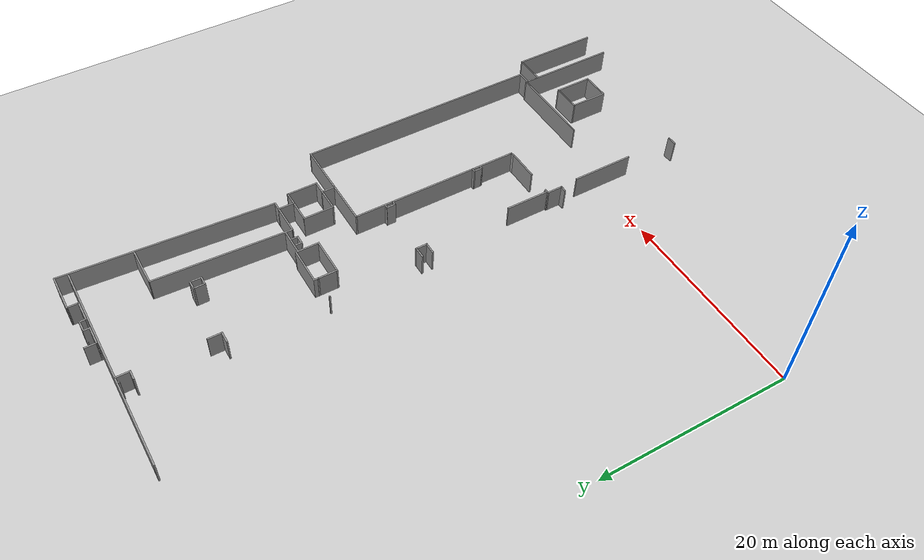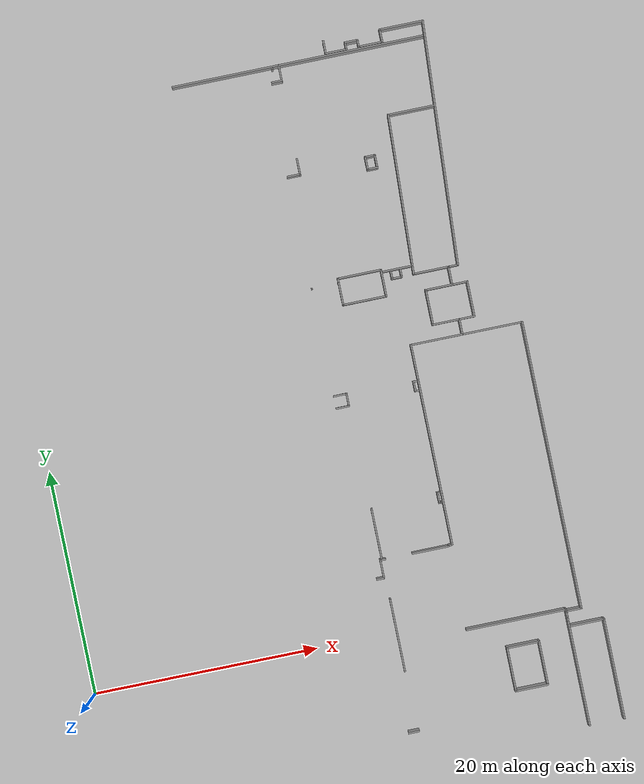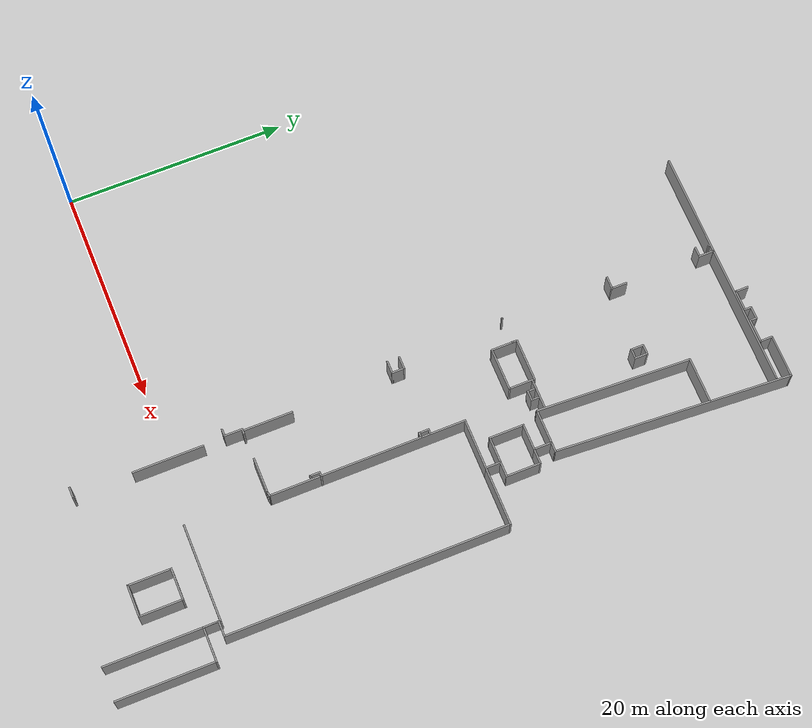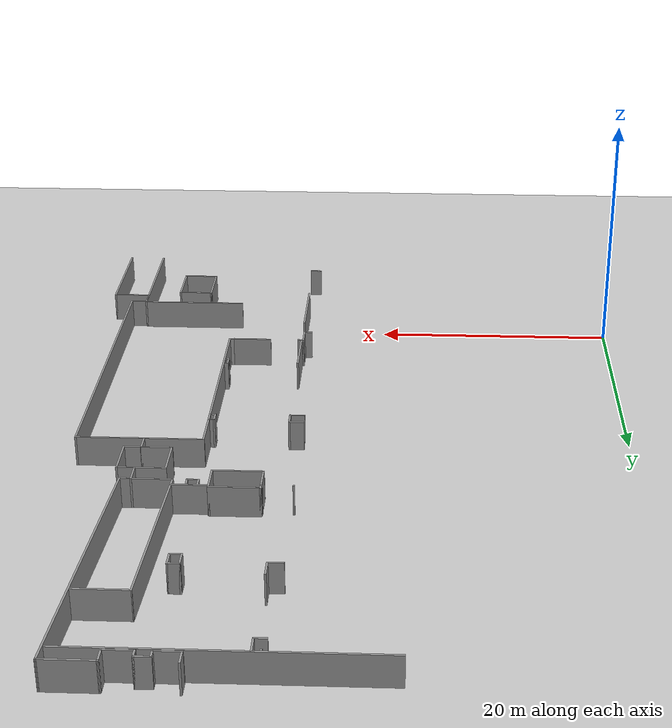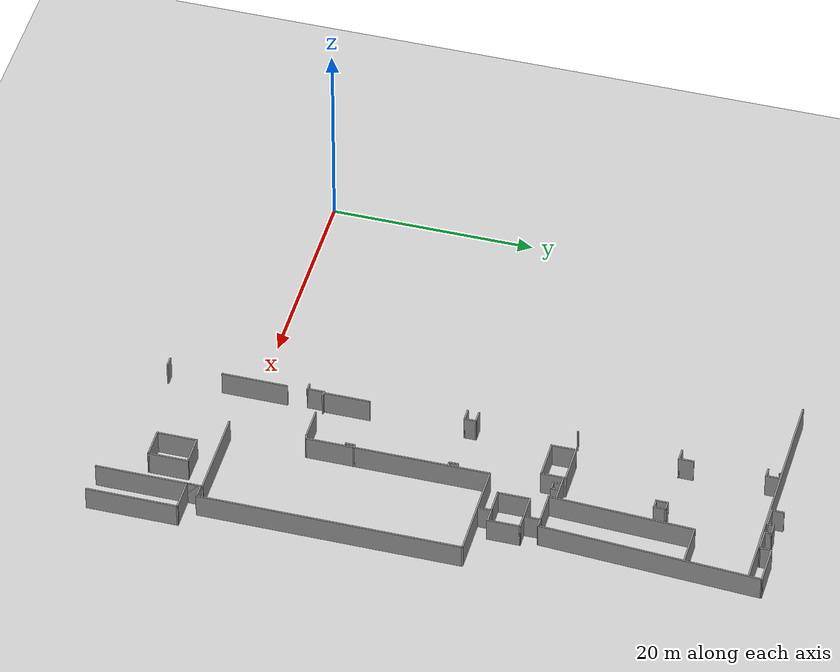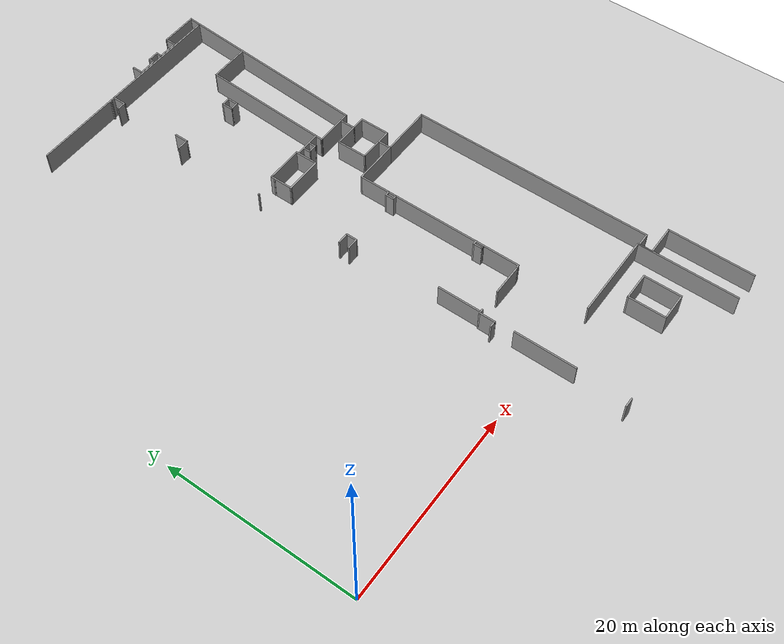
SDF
<sdf version="1.6">
 <world name="default">
  <model name="ground_plane">
   <static>1</static>
   <link name="link">
    <collision name="collision">
     <geometry><plane><normal>0 0 1</normal><size>100 100</size></plane></geometry>
     <surface><friction><ode><mu>100</mu><mu2>50</mu2></ode></friction></surface>
    </collision>
    <visual name="visual">
     <cast_shadows>0</cast_shadows>
     <geometry><plane><normal>0 0 1</normal><size>100 100</size></plane></geometry>
     <material>
      <script><uri>file://media/materials/scripts/gazebo.material</uri><name>Gazebo/Grey</name></script>
     </material>
    </visual>
   </link>
  </model>
  <model name="SEH_v11">
   <pose>0.537033 1.18809 0 0 -0 0</pose>
   <link name="Wall_104">
    <collision name="Wall_104_Collision">
     <geometry><box><size>6.5 0.15 2.5</size></box></geometry>
     <pose>0 0 1.25 0 -0 0</pose>
    </collision>
    <visual name="Wall_104_Visual">
     <pose>0 0 1.25 0 -0 0</pose>
     <geometry><box><size>6.5 0.15 2.5</size></box></geometry>
     <material>
      <script><uri>file://media/materials/scripts/gazebo.material</uri><name>Gazebo/Grey</name></script>
      <ambient>1 1 1 1</ambient>
     </material>
     <meta><layer>0</layer></meta>
    </visual>
    <pose>26.5958 -1.36118 0 0 -0 1.5708</pose>
   </link>
   <link name="Wall_111">
    <collision name="Wall_111_Collision">
     <geometry><box><size>0.75 0.15 2.5</size></box></geometry>
     <pose>0 0 1.25 0 -0 0</pose>
    </collision>
    <visual name="Wall_111_Visual">
     <pose>0 0 1.25 0 -0 0</pose>
     <geometry><box><size>0.75 0.15 2.5</size></box></geometry>
     <material>
      <script><uri>file://media/materials/scripts/gazebo.material</uri><name>Gazebo/Grey</name></script>
      <ambient>1 1 1 1</ambient>
     </material>
     <meta><layer>0</layer></meta>
    </visual>
    <pose>26.1458 3.81382 0 0 -0 0</pose>
   </link>
   <link name="Wall_112">
    <collision name="Wall_112_Collision">
     <geometry><box><size>1.75 0.15 2.5</size></box></geometry>
     <pose>0 0 1.25 0 -0 0</pose>
    </collision>
    <visual name="Wall_112_Visual">
     <pose>0 0 1.25 0 -0 0</pose>
     <geometry><box><size>1.75 0.15 2.5</size></box></geometry>
     <material>
      <script><uri>file://media/materials/scripts/gazebo.material</uri><name>Gazebo/Grey</name></script>
      <ambient>1 1 1 1</ambient>
     </material>
     <meta><layer>0</layer></meta>
    </visual>
    <pose>26.4458 4.61382 0 0 -0 1.5708</pose>
   </link>
   <link name="Wall_113">
    <pose>29.4958 5.41382 0 0 -0 0</pose>
    <visual name="Wall_113_Visual_0">
     <pose>-2.84048 0 1.25 0 -0 0</pose>
     <geometry><box><size>0.569046 0.15 2.5</size></box></geometry>
     <material>
      <script><uri>file://media/materials/scripts/gazebo.material</uri><name>Gazebo/Grey</name></script>
      <ambient>1 1 1 1</ambient>
     </material>
     <meta><layer>0</layer></meta>
    </visual>
    <collision name="Wall_113_Collision_0">
     <geometry><box><size>0.569046 0.15 2.5</size></box></geometry>
     <pose>-2.84048 0 1.25 0 -0 0</pose>
    </collision>
    <visual name="Wall_113_Visual_1">
     <pose>1.45452 0 1.25 0 -0 0</pose>
     <geometry><box><size>3.34095 0.15 2.5</size></box></geometry>
     <material>
      <script><uri>file://media/materials/scripts/gazebo.material</uri><name>Gazebo/Grey</name></script>
      <ambient>1 1 1 1</ambient>
     </material>
     <meta><layer>0</layer></meta>
    </visual>
    <collision name="Wall_113_Collision_1">
     <geometry><box><size>3.34095 0.15 2.5</size></box></geometry>
     <pose>1.45452 0 1.25 0 -0 0</pose>
    </collision>
   </link>
   <link name="Wall_180">
    <collision name="Wall_180_Collision">
     <geometry><box><size>1 0.15 2.5</size></box></geometry>
     <pose>0 0 1.25 0 -0 0</pose>
    </collision>
    <visual name="Wall_180_Visual">
     <pose>0 0 1.25 0 -0 0</pose>
     <geometry><box><size>1 0.15 2.5</size></box></geometry>
     <material>
      <script><uri>file://media/materials/scripts/gazebo.material</uri><name>Gazebo/Grey</name></script>
      <ambient>1 1 1 1</ambient>
     </material>
     <meta><layer>0</layer></meta>
    </visual>
    <pose>26.2934 -9.93506 0 0 -0 3.14159</pose>
   </link>
   <link name="Wall_198">
    <collision name="Wall_198_Collision">
     <geometry><box><size>2.5 0.15 2.5</size></box></geometry>
     <pose>0 0 1.25 0 -0 0</pose>
    </collision>
    <visual name="Wall_198_Visual">
     <pose>0 0 1.25 0 -0 0</pose>
     <geometry><box><size>2.5 0.15 2.5</size></box></geometry>
     <material>
      <script><uri>file://media/materials/scripts/gazebo.material</uri><name>Gazebo/Grey</name></script>
      <ambient>1 1 1 1</ambient>
     </material>
     <meta><layer>0</layer></meta>
    </visual>
    <pose>36.3156 24.6976 0 0 -0 3.14159</pose>
   </link>
   <link name="Wall_199">
    <collision name="Wall_199_Collision">
     <geometry><box><size>3.25 0.15 2.5</size></box></geometry>
     <pose>0 0 1.25 0 -0 0</pose>
    </collision>
    <visual name="Wall_199_Visual">
     <pose>0 0 1.25 0 -0 0</pose>
     <geometry><box><size>3.25 0.15 2.5</size></box></geometry>
     <material>
      <script><uri>file://media/materials/scripts/gazebo.material</uri><name>Gazebo/Grey</name></script>
      <ambient>1 1 1 1</ambient>
     </material>
     <meta><layer>0</layer></meta>
    </visual>
    <pose>35.1406 26.2476 0 0 -0 1.5708</pose>
   </link>
   <link name="Wall_200">
    <collision name="Wall_200_Collision">
     <geometry><box><size>2.5 0.15 2.5</size></box></geometry>
     <pose>0 0 1.25 0 -0 0</pose>
    </collision>
    <visual name="Wall_200_Visual">
     <pose>0 0 1.25 0 -0 0</pose>
     <geometry><box><size>2.5 0.15 2.5</size></box></geometry>
     <material>
      <script><uri>file://media/materials/scripts/gazebo.material</uri><name>Gazebo/Grey</name></script>
      <ambient>1 1 1 1</ambient>
     </material>
     <meta><layer>0</layer></meta>
    </visual>
    <pose>36.3156 27.7976 0 0 -0 0</pose>
   </link>
   <link name="Wall_203">
    <collision name="Wall_203_Collision">
     <geometry><box><size>3.25 0.15 2.5</size></box></geometry>
     <pose>0 0 1.25 0 -0 0</pose>
    </collision>
    <visual name="Wall_203_Visual">
     <pose>0 0 1.25 0 -0 0</pose>
     <geometry><box><size>3.25 0.15 2.5</size></box></geometry>
     <material>
      <script><uri>file://media/materials/scripts/gazebo.material</uri><name>Gazebo/Grey</name></script>
      <ambient>1 1 1 1</ambient>
     </material>
     <meta><layer>0</layer></meta>
    </visual>
    <pose>35.9406 29.3976 0 0 -0 3.14159</pose>
   </link>
   <link name="Wall_207">
    <collision name="Wall_207_Collision">
     <geometry><box><size>4.25 0.15 2.5</size></box></geometry>
     <pose>0 0 1.25 0 -0 0</pose>
    </collision>
    <visual name="Wall_207_Visual">
     <pose>0 0 1.25 0 -0 0</pose>
     <geometry><box><size>4.25 0.15 2.5</size></box></geometry>
     <material>
      <script><uri>file://media/materials/scripts/gazebo.material</uri><name>Gazebo/Grey</name></script>
      <ambient>1 1 1 1</ambient>
     </material>
     <meta><layer>0</layer></meta>
    </visual>
    <pose>37.0768 43.4917 0 0 -0 9.9e-05</pose>
   </link>
   <link name="Wall_209">
    <collision name="Wall_209_Collision">
     <geometry><box><size>14.2582 0.15 2.5</size></box></geometry>
     <pose>0 0 1.25 0 -0 0</pose>
    </collision>
    <visual name="Wall_209_Visual">
     <pose>0 0 1.25 0 -0 0</pose>
     <geometry><box><size>14.2582 0.15 2.5</size></box></geometry>
     <material>
      <script><uri>file://media/materials/scripts/gazebo.material</uri><name>Gazebo/Grey</name></script>
      <ambient>1 1 1 1</ambient>
     </material>
     <meta><layer>0</layer></meta>
    </visual>
    <pose>34.7086 36.4446 0 0 0 -1.61589</pose>
   </link>
   <link name="Wall_211">
    <collision name="Wall_211_Collision">
     <geometry><box><size>22.5 0.15 2.5</size></box></geometry>
     <pose>0 0 1.25 0 -0 0</pose>
    </collision>
    <visual name="Wall_211_Visual">
     <pose>0 0 1.25 0 -0 0</pose>
     <geometry><box><size>22.5 0.15 2.5</size></box></geometry>
     <material>
      <script><uri>file://media/materials/scripts/gazebo.material</uri><name>Gazebo/Grey</name></script>
      <ambient>1 1 1 1</ambient>
     </material>
     <meta><layer>0</layer></meta>
    </visual>
    <pose>28.196 49.6845 0 0 -0 0</pose>
   </link>
   <link name="Wall_215">
    <collision name="Wall_215_Collision">
     <geometry><box><size>1.25 0.15 2.5</size></box></geometry>
     <pose>0 0 1.25 0 -0 0</pose>
    </collision>
    <visual name="Wall_215_Visual">
     <pose>0 0 1.25 0 -0 0</pose>
     <geometry><box><size>1.25 0.15 2.5</size></box></geometry>
     <material>
      <script><uri>file://media/materials/scripts/gazebo.material</uri><name>Gazebo/Grey</name></script>
      <ambient>1 1 1 1</ambient>
     </material>
     <meta><layer>0</layer></meta>
    </visual>
    <pose>25.8523 39.9589 0 0 -0 0</pose>
   </link>
   <link name="Wall_216">
    <collision name="Wall_216_Collision">
     <geometry><box><size>1.5 0.15 2.5</size></box></geometry>
     <pose>0 0 1.25 0 -0 0</pose>
    </collision>
    <visual name="Wall_216_Visual">
     <pose>0 0 1.25 0 -0 0</pose>
     <geometry><box><size>1.5 0.15 2.5</size></box></geometry>
     <material>
      <script><uri>file://media/materials/scripts/gazebo.material</uri><name>Gazebo/Grey</name></script>
      <ambient>1 1 1 1</ambient>
     </material>
     <meta><layer>0</layer></meta>
    </visual>
    <pose>26.4023 40.6339 0 0 -0 1.5708</pose>
   </link>
   <link name="Wall_226">
    <collision name="Wall_226_Collision">
     <geometry><box><size>0.15 0.15 2.5</size></box></geometry>
     <pose>0 0 1.25 0 -0 0</pose>
    </collision>
    <visual name="Wall_226_Visual">
     <pose>0 0 1.25 0 -0 0</pose>
     <geometry><box><size>0.15 0.15 2.5</size></box></geometry>
     <material>
      <script><uri>file://media/materials/scripts/gazebo.material</uri><name>Gazebo/Grey</name></script>
      <ambient>1 1 1 1</ambient>
     </material>
     <meta><layer>0</layer></meta>
    </visual>
    <pose>25.8819 49.5142 0 0 -0 0</pose>
   </link>
   <link name="Wall_234">
    <collision name="Wall_234_Collision">
     <geometry><box><size>4.75 0.15 2.5</size></box></geometry>
     <pose>0 0 1.25 0 -0 0</pose>
    </collision>
    <visual name="Wall_234_Visual">
     <pose>0 0 1.25 0 -0 0</pose>
     <geometry><box><size>4.75 0.15 2.5</size></box></geometry>
     <material>
      <script><uri>file://media/materials/scripts/gazebo.material</uri><name>Gazebo/Grey</name></script>
      <ambient>1 1 1 1</ambient>
     </material>
     <meta><layer>0</layer></meta>
    </visual>
    <pose>35.1906 23.3476 0 0 -0 3.14159</pose>
   </link>
   <link name="Wall_235">
    <collision name="Wall_235_Collision">
     <geometry><box><size>18 0.15 2.5</size></box></geometry>
     <pose>0 0 1.25 0 -0 0</pose>
    </collision>
    <visual name="Wall_235_Visual">
     <pose>0 0 1.25 0 -0 0</pose>
     <geometry><box><size>18 0.15 2.5</size></box></geometry>
     <material>
      <script><uri>file://media/materials/scripts/gazebo.material</uri><name>Gazebo/Grey</name></script>
      <ambient>1 1 1 1</ambient>
     </material>
     <meta><layer>0</layer></meta>
    </visual>
    <pose>32.8906 14.4226 0 0 0 -1.5708</pose>
   </link>
   <link name="Wall_236">
    <collision name="Wall_236_Collision">
     <geometry><box><size>0.504818 0.15 2.5</size></box></geometry>
     <pose>0 0 1.25 0 -0 0</pose>
    </collision>
    <visual name="Wall_236_Visual">
     <pose>0 0 1.25 0 -0 0</pose>
     <geometry><box><size>0.504818 0.15 2.5</size></box></geometry>
     <material>
      <script><uri>file://media/materials/scripts/gazebo.material</uri><name>Gazebo/Grey</name></script>
      <ambient>1 1 1 1</ambient>
     </material>
     <meta><layer>0</layer></meta>
    </visual>
    <pose>32.7182 5.45573 0 0 0 -2.90311</pose>
   </link>
   <link name="Wall_238">
    <collision name="Wall_238_Collision">
     <geometry><box><size>0.5 0.15 2.5</size></box></geometry>
     <pose>0 0 1.25 0 -0 0</pose>
    </collision>
    <visual name="Wall_238_Visual">
     <pose>0 0 1.25 0 -0 0</pose>
     <geometry><box><size>0.5 0.15 2.5</size></box></geometry>
     <material>
      <script><uri>file://media/materials/scripts/gazebo.material</uri><name>Gazebo/Grey</name></script>
      <ambient>1 1 1 1</ambient>
     </material>
     <meta><layer>0</layer></meta>
    </visual>
    <pose>32.6399 20.15 0 0 -0 3.14159</pose>
   </link>
   <link name="Wall_239">
    <collision name="Wall_239_Collision">
     <geometry><box><size>1 0.15 2.5</size></box></geometry>
     <pose>0 0 1.25 0 -0 0</pose>
    </collision>
    <visual name="Wall_239_Visual">
     <pose>0 0 1.25 0 -0 0</pose>
     <geometry><box><size>1 0.15 2.5</size></box></geometry>
     <material>
      <script><uri>file://media/materials/scripts/gazebo.material</uri><name>Gazebo/Grey</name></script>
      <ambient>1 1 1 1</ambient>
     </material>
     <meta><layer>0</layer></meta>
    </visual>
    <pose>32.4649 19.725 0 0 0 -1.5708</pose>
   </link>
   <link name="Wall_240">
    <collision name="Wall_240_Collision">
     <geometry><box><size>0.5 0.15 2.5</size></box></geometry>
     <pose>0 0 1.25 0 -0 0</pose>
    </collision>
    <visual name="Wall_240_Visual">
     <pose>0 0 1.25 0 -0 0</pose>
     <geometry><box><size>0.5 0.15 2.5</size></box></geometry>
     <material>
      <script><uri>file://media/materials/scripts/gazebo.material</uri><name>Gazebo/Grey</name></script>
      <ambient>1 1 1 1</ambient>
     </material>
     <meta><layer>0</layer></meta>
    </visual>
    <pose>32.6399 19.3 0 0 -0 0</pose>
   </link>
   <link name="Wall_242">
    <collision name="Wall_242_Collision">
     <geometry><box><size>0.5 0.15 2.5</size></box></geometry>
     <pose>0 0 1.25 0 -0 0</pose>
    </collision>
    <visual name="Wall_242_Visual">
     <pose>0 0 1.25 0 -0 0</pose>
     <geometry><box><size>0.5 0.15 2.5</size></box></geometry>
     <material>
      <script><uri>file://media/materials/scripts/gazebo.material</uri><name>Gazebo/Grey</name></script>
      <ambient>1 1 1 1</ambient>
     </material>
     <meta><layer>0</layer></meta>
    </visual>
    <pose>32.7254 10.1432 0 0 -0 3.14159</pose>
   </link>
   <link name="Wall_243">
    <collision name="Wall_243_Collision">
     <geometry><box><size>1 0.15 2.5</size></box></geometry>
     <pose>0 0 1.25 0 -0 0</pose>
    </collision>
    <visual name="Wall_243_Visual">
     <pose>0 0 1.25 0 -0 0</pose>
     <geometry><box><size>1 0.15 2.5</size></box></geometry>
     <material>
      <script><uri>file://media/materials/scripts/gazebo.material</uri><name>Gazebo/Grey</name></script>
      <ambient>1 1 1 1</ambient>
     </material>
     <meta><layer>0</layer></meta>
    </visual>
    <pose>32.5504 9.71818 0 0 0 -1.5708</pose>
   </link>
   <link name="Wall_244">
    <collision name="Wall_244_Collision">
     <geometry><box><size>0.25 0.15 2.5</size></box></geometry>
     <pose>0 0 1.25 0 -0 0</pose>
    </collision>
    <visual name="Wall_244_Visual">
     <pose>0 0 1.25 0 -0 0</pose>
     <geometry><box><size>0.25 0.15 2.5</size></box></geometry>
     <material>
      <script><uri>file://media/materials/scripts/gazebo.material</uri><name>Gazebo/Grey</name></script>
      <ambient>1 1 1 1</ambient>
     </material>
     <meta><layer>0</layer></meta>
    </visual>
    <pose>32.6004 9.29318 0 0 -0 0</pose>
   </link>
   <link name="Wall_245">
    <collision name="Wall_245_Collision">
     <geometry><box><size>0.25 0.15 2.5</size></box></geometry>
     <pose>0 0 1.25 0 -0 0</pose>
    </collision>
    <visual name="Wall_245_Visual">
     <pose>0 0 1.25 0 -0 0</pose>
     <geometry><box><size>0.25 0.15 2.5</size></box></geometry>
     <material>
      <script><uri>file://media/materials/scripts/gazebo.material</uri><name>Gazebo/Grey</name></script>
      <ambient>1 1 1 1</ambient>
     </material>
     <meta><layer>0</layer></meta>
    </visual>
    <pose>32.7004 9.29318 0 0 -0 0</pose>
   </link>
   <link name="Wall_247">
    <collision name="Wall_247_Collision">
     <geometry><box><size>1.25 0.15 2.5</size></box></geometry>
     <pose>0 0 1.25 0 -0 0</pose>
    </collision>
    <visual name="Wall_247_Visual">
     <pose>0 0 1.25 0 -0 0</pose>
     <geometry><box><size>1.25 0.15 2.5</size></box></geometry>
     <material>
      <script><uri>file://media/materials/scripts/gazebo.material</uri><name>Gazebo/Grey</name></script>
      <ambient>1 1 1 1</ambient>
     </material>
     <meta><layer>0</layer></meta>
    </visual>
    <pose>32.2998 39.7308 0 0 0 -1.5708</pose>
   </link>
   <link name="Wall_248">
    <collision name="Wall_248_Collision">
     <geometry><box><size>1 0.15 2.5</size></box></geometry>
     <pose>0 0 1.25 0 -0 0</pose>
    </collision>
    <visual name="Wall_248_Visual">
     <pose>0 0 1.25 0 -0 0</pose>
     <geometry><box><size>1 0.15 2.5</size></box></geometry>
     <material>
      <script><uri>file://media/materials/scripts/gazebo.material</uri><name>Gazebo/Grey</name></script>
      <ambient>1 1 1 1</ambient>
     </material>
     <meta><layer>0</layer></meta>
    </visual>
    <pose>32.7248 39.1808 0 0 -0 0</pose>
   </link>
   <link name="Wall_249">
    <collision name="Wall_249_Collision">
     <geometry><box><size>1.25 0.15 2.5</size></box></geometry>
     <pose>0 0 1.25 0 -0 0</pose>
    </collision>
    <visual name="Wall_249_Visual">
     <pose>0 0 1.25 0 -0 0</pose>
     <geometry><box><size>1.25 0.15 2.5</size></box></geometry>
     <material>
      <script><uri>file://media/materials/scripts/gazebo.material</uri><name>Gazebo/Grey</name></script>
      <ambient>1 1 1 1</ambient>
     </material>
     <meta><layer>0</layer></meta>
    </visual>
    <pose>33.1498 39.7308 0 0 -0 1.5708</pose>
   </link>
   <link name="Wall_250">
    <collision name="Wall_250_Collision">
     <geometry><box><size>1 0.15 2.5</size></box></geometry>
     <pose>0 0 1.25 0 -0 0</pose>
    </collision>
    <visual name="Wall_250_Visual">
     <pose>0 0 1.25 0 -0 0</pose>
     <geometry><box><size>1 0.15 2.5</size></box></geometry>
     <material>
      <script><uri>file://media/materials/scripts/gazebo.material</uri><name>Gazebo/Grey</name></script>
      <ambient>1 1 1 1</ambient>
     </material>
     <meta><layer>0</layer></meta>
    </visual>
    <pose>32.7248 40.2808 0 0 -0 3.14159</pose>
   </link>
   <link name="Wall_255">
    <collision name="Wall_255_Collision">
     <geometry><box><size>1.25 0.15 2.5</size></box></geometry>
     <pose>0 0 1.25 0 -0 0</pose>
    </collision>
    <visual name="Wall_255_Visual">
     <pose>0 0 1.25 0 -0 0</pose>
     <geometry><box><size>1.25 0.15 2.5</size></box></geometry>
     <material>
      <script><uri>file://media/materials/scripts/gazebo.material</uri><name>Gazebo/Grey</name></script>
      <ambient>1 1 1 1</ambient>
     </material>
     <meta><layer>0</layer></meta>
    </visual>
    <pose>25.9414 19.1971 0 0 -0 0</pose>
   </link>
   <link name="Wall_256">
    <collision name="Wall_256_Collision">
     <geometry><box><size>1.25 0.15 2.5</size></box></geometry>
     <pose>0 0 1.25 0 -0 0</pose>
    </collision>
    <visual name="Wall_256_Visual">
     <pose>0 0 1.25 0 -0 0</pose>
     <geometry><box><size>1.25 0.15 2.5</size></box></geometry>
     <material>
      <script><uri>file://media/materials/scripts/gazebo.material</uri><name>Gazebo/Grey</name></script>
      <ambient>1 1 1 1</ambient>
     </material>
     <meta><layer>0</layer></meta>
    </visual>
    <pose>26.4914 19.7471 0 0 -0 1.5708</pose>
   </link>
   <link name="Wall_257">
    <collision name="Wall_257_Collision">
     <geometry><box><size>1.25 0.15 2.5</size></box></geometry>
     <pose>0 0 1.25 0 -0 0</pose>
    </collision>
    <visual name="Wall_257_Visual">
     <pose>0 0 1.25 0 -0 0</pose>
     <geometry><box><size>1.25 0.15 2.5</size></box></geometry>
     <material>
      <script><uri>file://media/materials/scripts/gazebo.material</uri><name>Gazebo/Grey</name></script>
      <ambient>1 1 1 1</ambient>
     </material>
     <meta><layer>0</layer></meta>
    </visual>
    <pose>25.9414 20.2971 0 0 -0 3.14159</pose>
   </link>
   <link name="Wall_259">
    <collision name="Wall_259_Collision">
     <geometry><box><size>2.75 0.15 2.5</size></box></geometry>
     <pose>0 0 1.25 0 -0 0</pose>
    </collision>
    <visual name="Wall_259_Visual">
     <pose>0 0 1.25 0 -0 0</pose>
     <geometry><box><size>2.75 0.15 2.5</size></box></geometry>
     <material>
      <script><uri>file://media/materials/scripts/gazebo.material</uri><name>Gazebo/Grey</name></script>
      <ambient>1 1 1 1</ambient>
     </material>
     <meta><layer>0</layer></meta>
    </visual>
    <pose>33.0966 30.1227 0 0 -0 3.14159</pose>
   </link>
   <link name="Wall_261">
    <collision name="Wall_261_Collision">
     <geometry><box><size>2.5 0.15 2.5</size></box></geometry>
     <pose>0 0 1.25 0 -0 0</pose>
    </collision>
    <visual name="Wall_261_Visual">
     <pose>0 0 1.25 0 -0 0</pose>
     <geometry><box><size>2.5 0.15 2.5</size></box></geometry>
     <material>
      <script><uri>file://media/materials/scripts/gazebo.material</uri><name>Gazebo/Grey</name></script>
      <ambient>1 1 1 1</ambient>
     </material>
     <meta><layer>0</layer></meta>
    </visual>
    <pose>31.6425 29.1567 0 0 0 -1.5708</pose>
   </link>
   <link name="Wall_262">
    <collision name="Wall_262_Collision">
     <geometry><box><size>4 0.15 2.5</size></box></geometry>
     <pose>0 0 1.25 0 -0 0</pose>
    </collision>
    <visual name="Wall_262_Visual">
     <pose>0 0 1.25 0 -0 0</pose>
     <geometry><box><size>4 0.15 2.5</size></box></geometry>
     <material>
      <script><uri>file://media/materials/scripts/gazebo.material</uri><name>Gazebo/Grey</name></script>
      <ambient>1 1 1 1</ambient>
     </material>
     <meta><layer>0</layer></meta>
    </visual>
    <pose>29.7175 27.9817 0 0 -0 3.14159</pose>
   </link>
   <link name="Wall_263">
    <collision name="Wall_263_Collision">
     <geometry><box><size>2.5 0.15 2.5</size></box></geometry>
     <pose>0 0 1.25 0 -0 0</pose>
    </collision>
    <visual name="Wall_263_Visual">
     <pose>0 0 1.25 0 -0 0</pose>
     <geometry><box><size>2.5 0.15 2.5</size></box></geometry>
     <material>
      <script><uri>file://media/materials/scripts/gazebo.material</uri><name>Gazebo/Grey</name></script>
      <ambient>1 1 1 1</ambient>
     </material>
     <meta><layer>0</layer></meta>
    </visual>
    <pose>27.7925 29.1567 0 0 -0 1.5708</pose>
   </link>
   <link name="Wall_264">
    <collision name="Wall_264_Collision">
     <geometry><box><size>4 0.15 2.5</size></box></geometry>
     <pose>0 0 1.25 0 -0 0</pose>
    </collision>
    <visual name="Wall_264_Visual">
     <pose>0 0 1.25 0 -0 0</pose>
     <geometry><box><size>4 0.15 2.5</size></box></geometry>
     <material>
      <script><uri>file://media/materials/scripts/gazebo.material</uri><name>Gazebo/Grey</name></script>
      <ambient>1 1 1 1</ambient>
     </material>
     <meta><layer>0</layer></meta>
    </visual>
    <pose>29.7175 30.3317 0 0 -0 0</pose>
   </link>
   <link name="Wall_268">
    <pose>26.5693 29.9353 0 0 -0 3.14159</pose>
    <visual name="Wall_268_Visual_0">
     <pose>-1.18861 0 1.25 0 -0 0</pose>
     <geometry><box><size>0.12278 0.15 2.5</size></box></geometry>
     <material>
      <script><uri>file://media/materials/scripts/gazebo.material</uri><name>Gazebo/Grey</name></script>
      <ambient>1 1 1 1</ambient>
     </material>
     <meta><layer>0</layer></meta>
    </visual>
    <collision name="Wall_268_Collision_0">
     <geometry><box><size>0.12278 0.15 2.5</size></box></geometry>
     <pose>-1.18861 0 1.25 0 -0 0</pose>
    </collision>
    <visual name="Wall_268_Visual_1">
     <pose>1.18172 0 1.25 0 -0 0</pose>
     <geometry><box><size>0.136554 0.15 2.5</size></box></geometry>
     <material>
      <script><uri>file://media/materials/scripts/gazebo.material</uri><name>Gazebo/Grey</name></script>
      <ambient>1 1 1 1</ambient>
     </material>
     <meta><layer>0</layer></meta>
    </visual>
    <collision name="Wall_268_Collision_1">
     <geometry><box><size>0.136554 0.15 2.5</size></box></geometry>
     <pose>1.18172 0 1.25 0 -0 0</pose>
    </collision>
   </link>
   <link name="Wall_270">
    <collision name="Wall_270_Collision">
     <geometry><box><size>0.75 0.15 2.5</size></box></geometry>
     <pose>0 0 1.25 0 -0 0</pose>
    </collision>
    <visual name="Wall_270_Visual">
     <pose>0 0 1.25 0 -0 0</pose>
     <geometry><box><size>0.75 0.15 2.5</size></box></geometry>
     <material>
      <script><uri>file://media/materials/scripts/gazebo.material</uri><name>Gazebo/Grey</name></script>
      <ambient>1 1 1 1</ambient>
     </material>
     <meta><layer>0</layer></meta>
    </visual>
    <pose>32.4591 29.6641 0 0 0 -1.5708</pose>
   </link>
   <link name="Wall_273">
    <collision name="Wall_273_Collision">
     <geometry><box><size>1 0.15 2.5</size></box></geometry>
     <pose>0 0 1.25 0 -0 0</pose>
    </collision>
    <visual name="Wall_273_Visual">
     <pose>0 0 1.25 0 -0 0</pose>
     <geometry><box><size>1 0.15 2.5</size></box></geometry>
     <material>
      <script><uri>file://media/materials/scripts/gazebo.material</uri><name>Gazebo/Grey</name></script>
      <ambient>1 1 1 1</ambient>
     </material>
     <meta><layer>0</layer></meta>
    </visual>
    <pose>32.8841 29.3641 0 0 -0 0</pose>
   </link>
   <link name="Wall_274">
    <collision name="Wall_274_Collision">
     <geometry><box><size>0.75 0.15 2.5</size></box></geometry>
     <pose>0 0 1.25 0 -0 0</pose>
    </collision>
    <visual name="Wall_274_Visual">
     <pose>0 0 1.25 0 -0 0</pose>
     <geometry><box><size>0.75 0.15 2.5</size></box></geometry>
     <material>
      <script><uri>file://media/materials/scripts/gazebo.material</uri><name>Gazebo/Grey</name></script>
      <ambient>1 1 1 1</ambient>
     </material>
     <meta><layer>0</layer></meta>
    </visual>
    <pose>33.3091 29.6641 0 0 -0 1.5708</pose>
   </link>
   <link name="Wall_285">
    <collision name="Wall_285_Collision">
     <geometry><box><size>4.5 0.15 2.5</size></box></geometry>
     <pose>0 0 1.25 0 -0 0</pose>
    </collision>
    <visual name="Wall_285_Visual">
     <pose>0 0 1.25 0 -0 0</pose>
     <geometry><box><size>4.5 0.15 2.5</size></box></geometry>
     <material>
      <script><uri>file://media/materials/scripts/gazebo.material</uri><name>Gazebo/Grey</name></script>
      <ambient>1 1 1 1</ambient>
     </material>
     <meta><layer>0</layer></meta>
    </visual>
    <pose>26.5958 7.73882 0 0 0 -1.5708</pose>
   </link>
   <link name="Wall_306">
    <collision name="Wall_306_Collision">
     <geometry><box><size>1 0.15 2.5</size></box></geometry>
     <pose>0 0 1.25 0 -0 0</pose>
    </collision>
    <visual name="Wall_306_Visual">
     <pose>0 0 1.25 0 -0 0</pose>
     <geometry><box><size>1 0.15 2.5</size></box></geometry>
     <material>
      <script><uri>file://media/materials/scripts/gazebo.material</uri><name>Gazebo/Grey</name></script>
      <ambient>1 1 1 1</ambient>
     </material>
     <meta><layer>0</layer></meta>
    </visual>
    <pose>26.0662 48.3215 0 0 -0 0</pose>
   </link>
   <link name="Wall_307">
    <collision name="Wall_307_Collision">
     <geometry><box><size>1.5 0.15 2.5</size></box></geometry>
     <pose>0 0 1.25 0 -0 0</pose>
    </collision>
    <visual name="Wall_307_Visual">
     <pose>0 0 1.25 0 -0 0</pose>
     <geometry><box><size>1.5 0.15 2.5</size></box></geometry>
     <material>
      <script><uri>file://media/materials/scripts/gazebo.material</uri><name>Gazebo/Grey</name></script>
      <ambient>1 1 1 1</ambient>
     </material>
     <meta><layer>0</layer></meta>
    </visual>
    <pose>26.4912 48.9965 0 0 -0 1.5708</pose>
   </link>
   <link name="Wall_309">
    <collision name="Wall_309_Collision">
     <geometry><box><size>0.15 0.15 2.5</size></box></geometry>
     <pose>0 0 1.25 0 -0 0</pose>
    </collision>
    <visual name="Wall_309_Visual">
     <pose>0 0 1.25 0 -0 0</pose>
     <geometry><box><size>0.15 0.15 2.5</size></box></geometry>
     <material>
      <script><uri>file://media/materials/scripts/gazebo.material</uri><name>Gazebo/Grey</name></script>
      <ambient>1 1 1 1</ambient>
     </material>
     <meta><layer>0</layer></meta>
    </visual>
    <pose>26.4912 49.6715 0 0 -0 0</pose>
   </link>
   <link name="Wall_39">
    <collision name="Wall_39_Collision">
     <geometry><box><size>9 0.15 2.5</size></box></geometry>
     <pose>0 0 1.25 0 -0 0</pose>
    </collision>
    <visual name="Wall_39_Visual">
     <pose>0 0 1.25 0 -0 0</pose>
     <geometry><box><size>9 0.15 2.5</size></box></geometry>
     <material>
      <script><uri>file://media/materials/scripts/gazebo.material</uri><name>Gazebo/Grey</name></script>
      <ambient>1 1 1 1</ambient>
     </material>
     <meta><layer>0</layer></meta>
    </visual>
    <pose>44.5906 -8.02736 0 0 -0 1.5708</pose>
   </link>
   <link name="Wall_40">
    <collision name="Wall_40_Collision">
     <geometry><box><size>3.25 0.15 2.5</size></box></geometry>
     <pose>0 0 1.25 0 -0 0</pose>
    </collision>
    <visual name="Wall_40_Visual">
     <pose>0 0 1.25 0 -0 0</pose>
     <geometry><box><size>3.25 0.15 2.5</size></box></geometry>
     <material>
      <script><uri>file://media/materials/scripts/gazebo.material</uri><name>Gazebo/Grey</name></script>
      <ambient>1 1 1 1</ambient>
     </material>
     <meta><layer>0</layer></meta>
    </visual>
    <pose>43.0406 -3.60236 0 0 -0 3.14159</pose>
   </link>
   <link name="Wall_44">
    <collision name="Wall_44_Collision">
     <geometry><box><size>1.5 0.15 2.5</size></box></geometry>
     <pose>0 0 1.25 0 -0 0</pose>
    </collision>
    <visual name="Wall_44_Visual">
     <pose>0 0 1.25 0 -0 0</pose>
     <geometry><box><size>1.5 0.15 2.5</size></box></geometry>
     <material>
      <script><uri>file://media/materials/scripts/gazebo.material</uri><name>Gazebo/Grey</name></script>
      <ambient>1 1 1 1</ambient>
     </material>
     <meta><layer>0</layer></meta>
    </visual>
    <pose>41.4906 -2.92736 0 0 -0 1.5708</pose>
   </link>
   <link name="Wall_45">
    <collision name="Wall_45_Collision">
     <geometry><box><size>1.5 0.15 2.5</size></box></geometry>
     <pose>0 0 1.25 0 -0 0</pose>
    </collision>
    <visual name="Wall_45_Visual">
     <pose>0 0 1.25 0 -0 0</pose>
     <geometry><box><size>1.5 0.15 2.5</size></box></geometry>
     <material>
      <script><uri>file://media/materials/scripts/gazebo.material</uri><name>Gazebo/Grey</name></script>
      <ambient>1 1 1 1</ambient>
     </material>
     <meta><layer>0</layer></meta>
    </visual>
    <pose>42.1656 -2.25236 0 0 -0 0</pose>
   </link>
   <link name="Wall_46">
    <collision name="Wall_46_Collision">
     <geometry><box><size>25.75 0.15 2.5</size></box></geometry>
     <pose>0 0 1.25 0 -0 0</pose>
    </collision>
    <visual name="Wall_46_Visual">
     <pose>0 0 1.25 0 -0 0</pose>
     <geometry><box><size>25.75 0.15 2.5</size></box></geometry>
     <material>
      <script><uri>file://media/materials/scripts/gazebo.material</uri><name>Gazebo/Grey</name></script>
      <ambient>1 1 1 1</ambient>
     </material>
     <meta><layer>0</layer></meta>
    </visual>
    <pose>42.8406 10.5476 0 0 -0 1.5708</pose>
   </link>
   <link name="Wall_47">
    <collision name="Wall_47_Collision">
     <geometry><box><size>5.5 0.15 2.5</size></box></geometry>
     <pose>0 0 1.25 0 -0 0</pose>
    </collision>
    <visual name="Wall_47_Visual">
     <pose>0 0 1.25 0 -0 0</pose>
     <geometry><box><size>5.5 0.15 2.5</size></box></geometry>
     <material>
      <script><uri>file://media/materials/scripts/gazebo.material</uri><name>Gazebo/Grey</name></script>
      <ambient>1 1 1 1</ambient>
     </material>
     <meta><layer>0</layer></meta>
    </visual>
    <pose>40.1656 23.3476 0 0 -0 3.14159</pose>
   </link>
   <link name="Wall_48">
    <collision name="Wall_48_Collision">
     <geometry><box><size>1.5 0.15 2.5</size></box></geometry>
     <pose>0 0 1.25 0 -0 0</pose>
    </collision>
    <visual name="Wall_48_Visual">
     <pose>0 0 1.25 0 -0 0</pose>
     <geometry><box><size>1.5 0.15 2.5</size></box></geometry>
     <material>
      <script><uri>file://media/materials/scripts/gazebo.material</uri><name>Gazebo/Grey</name></script>
      <ambient>1 1 1 1</ambient>
     </material>
     <meta><layer>0</layer></meta>
    </visual>
    <pose>37.4906 24.0226 0 0 -0 1.5708</pose>
   </link>
   <link name="Wall_486">
    <collision name="Wall_486_Collision">
     <geometry><box><size>10.5 0.15 2.5</size></box></geometry>
     <pose>0 0 1.25 0 -0 0</pose>
    </collision>
    <visual name="Wall_486_Visual">
     <pose>0 0 1.25 0 -0 0</pose>
     <geometry><box><size>10.5 0.15 2.5</size></box></geometry>
     <material>
      <script><uri>file://media/materials/scripts/gazebo.material</uri><name>Gazebo/Grey</name></script>
      <ambient>1 1 1 1</ambient>
     </material>
     <meta><layer>0</layer></meta>
    </visual>
    <pose>41.4906 -7.27736 0 0 -0 1.5708</pose>
   </link>
   <link name="Wall_487">
    <collision name="Wall_487_Collision">
     <geometry><box><size>9 0.15 2.5</size></box></geometry>
     <pose>0 0 1.25 0 -0 0</pose>
    </collision>
    <visual name="Wall_487_Visual">
     <pose>0 0 1.25 0 -0 0</pose>
     <geometry><box><size>9 0.15 2.5</size></box></geometry>
     <material>
      <script><uri>file://media/materials/scripts/gazebo.material</uri><name>Gazebo/Grey</name></script>
      <ambient>1 1 1 1</ambient>
     </material>
     <meta><layer>0</layer></meta>
    </visual>
    <pose>37.0656 -2.10236 0 0 -0 3.14159</pose>
   </link>
   <link name="Wall_489">
    <collision name="Wall_489_Collision">
     <geometry><box><size>4 0.15 2.5</size></box></geometry>
     <pose>0 0 1.25 0 -0 0</pose>
    </collision>
    <visual name="Wall_489_Visual">
     <pose>0 0 1.25 0 -0 0</pose>
     <geometry><box><size>4 0.15 2.5</size></box></geometry>
     <material>
      <script><uri>file://media/materials/scripts/gazebo.material</uri><name>Gazebo/Grey</name></script>
      <ambient>1 1 1 1</ambient>
     </material>
     <meta><layer>0</layer></meta>
    </visual>
    <pose>35.7717 -6.29504 0 0 0 -1.5708</pose>
   </link>
   <link name="Wall_490">
    <collision name="Wall_490_Collision">
     <geometry><box><size>3 0.15 2.5</size></box></geometry>
     <pose>0 0 1.25 0 -0 0</pose>
    </collision>
    <visual name="Wall_490_Visual">
     <pose>0 0 1.25 0 -0 0</pose>
     <geometry><box><size>3 0.15 2.5</size></box></geometry>
     <material>
      <script><uri>file://media/materials/scripts/gazebo.material</uri><name>Gazebo/Grey</name></script>
      <ambient>1 1 1 1</ambient>
     </material>
     <meta><layer>0</layer></meta>
    </visual>
    <pose>37.1967 -8.22005 0 0 -0 0</pose>
   </link>
   <link name="Wall_491">
    <collision name="Wall_491_Collision">
     <geometry><box><size>4 0.15 2.5</size></box></geometry>
     <pose>0 0 1.25 0 -0 0</pose>
    </collision>
    <visual name="Wall_491_Visual">
     <pose>0 0 1.25 0 -0 0</pose>
     <geometry><box><size>4 0.15 2.5</size></box></geometry>
     <material>
      <script><uri>file://media/materials/scripts/gazebo.material</uri><name>Gazebo/Grey</name></script>
      <ambient>1 1 1 1</ambient>
     </material>
     <meta><layer>0</layer></meta>
    </visual>
    <pose>38.6217 -6.29504 0 0 -0 1.5708</pose>
   </link>
   <link name="Wall_492">
    <collision name="Wall_492_Collision">
     <geometry><box><size>3 0.15 2.5</size></box></geometry>
     <pose>0 0 1.25 0 -0 0</pose>
    </collision>
    <visual name="Wall_492_Visual">
     <pose>0 0 1.25 0 -0 0</pose>
     <geometry><box><size>3 0.15 2.5</size></box></geometry>
     <material>
      <script><uri>file://media/materials/scripts/gazebo.material</uri><name>Gazebo/Grey</name></script>
      <ambient>1 1 1 1</ambient>
     </material>
     <meta><layer>0</layer></meta>
    </visual>
    <pose>37.1967 -4.37004 0 0 -0 3.14159</pose>
   </link>
   <link name="Wall_53">
    <collision name="Wall_53_Collision">
     <geometry><box><size>1.5 0.15 2.5</size></box></geometry>
     <pose>0 0 1.25 0 -0 0</pose>
    </collision>
    <visual name="Wall_53_Visual">
     <pose>0 0 1.25 0 -0 0</pose>
     <geometry><box><size>1.5 0.15 2.5</size></box></geometry>
     <material>
      <script><uri>file://media/materials/scripts/gazebo.material</uri><name>Gazebo/Grey</name></script>
      <ambient>1 1 1 1</ambient>
     </material>
     <meta><layer>0</layer></meta>
    </visual>
    <pose>38.1656 24.6976 0 0 -0 0</pose>
   </link>
   <link name="Wall_54">
    <collision name="Wall_54_Collision">
     <geometry><box><size>3.25 0.15 2.5</size></box></geometry>
     <pose>0 0 1.25 0 -0 0</pose>
    </collision>
    <visual name="Wall_54_Visual">
     <pose>0 0 1.25 0 -0 0</pose>
     <geometry><box><size>3.25 0.15 2.5</size></box></geometry>
     <material>
      <script><uri>file://media/materials/scripts/gazebo.material</uri><name>Gazebo/Grey</name></script>
      <ambient>1 1 1 1</ambient>
     </material>
     <meta><layer>0</layer></meta>
    </visual>
    <pose>38.8406 26.2476 0 0 -0 1.5708</pose>
   </link>
   <link name="Wall_55">
    <collision name="Wall_55_Collision">
     <geometry><box><size>1.5 0.15 2.5</size></box></geometry>
     <pose>0 0 1.25 0 -0 0</pose>
    </collision>
    <visual name="Wall_55_Visual">
     <pose>0 0 1.25 0 -0 0</pose>
     <geometry><box><size>1.5 0.15 2.5</size></box></geometry>
     <material>
      <script><uri>file://media/materials/scripts/gazebo.material</uri><name>Gazebo/Grey</name></script>
      <ambient>1 1 1 1</ambient>
     </material>
     <meta><layer>0</layer></meta>
    </visual>
    <pose>38.1656 27.7976 0 0 -0 3.14159</pose>
   </link>
   <link name="Wall_56">
    <collision name="Wall_56_Collision">
     <geometry><box><size>1.75 0.15 2.5</size></box></geometry>
     <pose>0 0 1.25 0 -0 0</pose>
    </collision>
    <visual name="Wall_56_Visual">
     <pose>0 0 1.25 0 -0 0</pose>
     <geometry><box><size>1.75 0.15 2.5</size></box></geometry>
     <material>
      <script><uri>file://media/materials/scripts/gazebo.material</uri><name>Gazebo/Grey</name></script>
      <ambient>1 1 1 1</ambient>
     </material>
     <meta><layer>0</layer></meta>
    </visual>
    <pose>37.4906 28.5976 0 0 -0 1.5708</pose>
   </link>
   <link name="Wall_57">
    <collision name="Wall_57_Collision">
     <geometry><box><size>1 0.15 2.5</size></box></geometry>
     <pose>0 0 1.25 0 -0 0</pose>
    </collision>
    <visual name="Wall_57_Visual">
     <pose>0 0 1.25 0 -0 0</pose>
     <geometry><box><size>1 0.15 2.5</size></box></geometry>
     <material>
      <script><uri>file://media/materials/scripts/gazebo.material</uri><name>Gazebo/Grey</name></script>
      <ambient>1 1 1 1</ambient>
     </material>
     <meta><layer>0</layer></meta>
    </visual>
    <pose>37.9156 29.3976 0 0 -0 0</pose>
   </link>
   <link name="Wall_59">
    <collision name="Wall_59_Collision">
     <geometry><box><size>21.7508 0.15 2.5</size></box></geometry>
     <pose>0 0 1.25 0 -0 0</pose>
    </collision>
    <visual name="Wall_59_Visual">
     <pose>0 0 1.25 0 -0 0</pose>
     <geometry><box><size>21.7508 0.15 2.5</size></box></geometry>
     <material>
      <script><uri>file://media/materials/scripts/gazebo.material</uri><name>Gazebo/Grey</name></script>
      <ambient>1 1 1 1</ambient>
     </material>
     <meta><layer>0</layer></meta>
    </visual>
    <pose>38.9935 40.1783 0 0 0 -1.63128</pose>
   </link>
   <link name="Wall_61">
    <collision name="Wall_61_Collision">
     <geometry><box><size>4 0.15 2.5</size></box></geometry>
     <pose>0 0 1.25 0 -0 0</pose>
    </collision>
    <visual name="Wall_61_Visual">
     <pose>0 0 1.25 0 -0 0</pose>
     <geometry><box><size>4 0.15 2.5</size></box></geometry>
     <material>
      <script><uri>file://media/materials/scripts/gazebo.material</uri><name>Gazebo/Grey</name></script>
      <ambient>1 1 1 1</ambient>
     </material>
     <meta><layer>0</layer></meta>
    </visual>
    <pose>37.7213 50.959 0 0 -0 3.14159</pose>
   </link>
   <link name="Wall_62">
    <collision name="Wall_62_Collision">
     <geometry><box><size>1.25008 0.15 2.5</size></box></geometry>
     <pose>0 0 1.25 0 -0 0</pose>
    </collision>
    <visual name="Wall_62_Visual">
     <pose>0 0 1.25 0 -0 0</pose>
     <geometry><box><size>1.25008 0.15 2.5</size></box></geometry>
     <material>
      <script><uri>file://media/materials/scripts/gazebo.material</uri><name>Gazebo/Grey</name></script>
      <ambient>1 1 1 1</ambient>
     </material>
     <meta><layer>0</layer></meta>
    </visual>
    <pose>35.7993 50.4089 0 0 0 -1.56532</pose>
   </link>
   <link name="Wall_67">
    <collision name="Wall_67_Collision">
     <geometry><box><size>2.25 0.15 2.5</size></box></geometry>
     <pose>0 0 1.25 0 -0 0</pose>
    </collision>
    <visual name="Wall_67_Visual">
     <pose>0 0 1.25 0 -0 0</pose>
     <geometry><box><size>2.25 0.15 2.5</size></box></geometry>
     <material>
      <script><uri>file://media/materials/scripts/gazebo.material</uri><name>Gazebo/Grey</name></script>
      <ambient>1 1 1 1</ambient>
     </material>
     <meta><layer>0</layer></meta>
    </visual>
    <pose>34.7523 49.8589 0 0 -0 3.14159</pose>
   </link>
   <link name="Wall_68">
    <collision name="Wall_68_Collision">
     <geometry><box><size>0.75 0.15 2.5</size></box></geometry>
     <pose>0 0 1.25 0 -0 0</pose>
    </collision>
    <visual name="Wall_68_Visual">
     <pose>0 0 1.25 0 -0 0</pose>
     <geometry><box><size>0.75 0.15 2.5</size></box></geometry>
     <material>
      <script><uri>file://media/materials/scripts/gazebo.material</uri><name>Gazebo/Grey</name></script>
      <ambient>1 1 1 1</ambient>
     </material>
     <meta><layer>0</layer></meta>
    </visual>
    <pose>33.7023 50.1589 0 0 -0 1.5708</pose>
   </link>
   <link name="Wall_69">
    <collision name="Wall_69_Collision">
     <geometry><box><size>1.25 0.15 2.5</size></box></geometry>
     <pose>0 0 1.25 0 -0 0</pose>
    </collision>
    <visual name="Wall_69_Visual">
     <pose>0 0 1.25 0 -0 0</pose>
     <geometry><box><size>1.25 0.15 2.5</size></box></geometry>
     <material>
      <script><uri>file://media/materials/scripts/gazebo.material</uri><name>Gazebo/Grey</name></script>
      <ambient>1 1 1 1</ambient>
     </material>
     <meta><layer>0</layer></meta>
    </visual>
    <pose>33.1523 50.4589 0 0 -0 3.14159</pose>
   </link>
   <link name="Wall_70">
    <collision name="Wall_70_Collision">
     <geometry><box><size>0.75 0.15 2.5</size></box></geometry>
     <pose>0 0 1.25 0 -0 0</pose>
    </collision>
    <visual name="Wall_70_Visual">
     <pose>0 0 1.25 0 -0 0</pose>
     <geometry><box><size>0.75 0.15 2.5</size></box></geometry>
     <material>
      <script><uri>file://media/materials/scripts/gazebo.material</uri><name>Gazebo/Grey</name></script>
      <ambient>1 1 1 1</ambient>
     </material>
     <meta><layer>0</layer></meta>
    </visual>
    <pose>32.6023 50.1589 0 0 0 -1.5708</pose>
   </link>
   <link name="Wall_71">
    <collision name="Wall_71_Collision">
     <geometry><box><size>2 0.15 2.5</size></box></geometry>
     <pose>0 0 1.25 0 -0 0</pose>
    </collision>
    <visual name="Wall_71_Visual">
     <pose>0 0 1.25 0 -0 0</pose>
     <geometry><box><size>2 0.15 2.5</size></box></geometry>
     <material>
      <script><uri>file://media/materials/scripts/gazebo.material</uri><name>Gazebo/Grey</name></script>
      <ambient>1 1 1 1</ambient>
     </material>
     <meta><layer>0</layer></meta>
    </visual>
    <pose>31.6773 49.8589 0 0 -0 3.14159</pose>
   </link>
   <link name="Wall_72">
    <collision name="Wall_72_Collision">
     <geometry><box><size>1.25 0.15 2.5</size></box></geometry>
     <pose>0 0 1.25 0 -0 0</pose>
    </collision>
    <visual name="Wall_72_Visual">
     <pose>0 0 1.25 0 -0 0</pose>
     <geometry><box><size>1.25 0.15 2.5</size></box></geometry>
     <material>
      <script><uri>file://media/materials/scripts/gazebo.material</uri><name>Gazebo/Grey</name></script>
      <ambient>1 1 1 1</ambient>
     </material>
     <meta><layer>0</layer></meta>
    </visual>
    <pose>30.7523 50.4089 0 0 -0 1.5708</pose>
   </link>
   <static>1</static>
  </model>
 </world>
</sdf>
